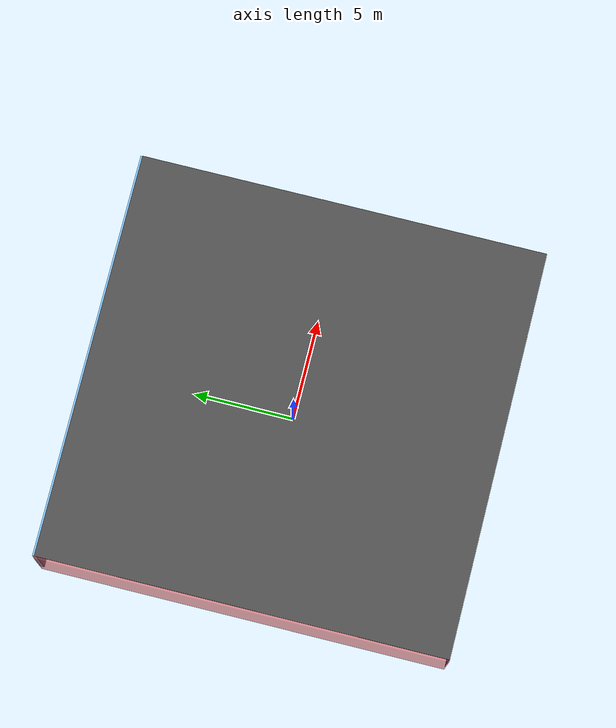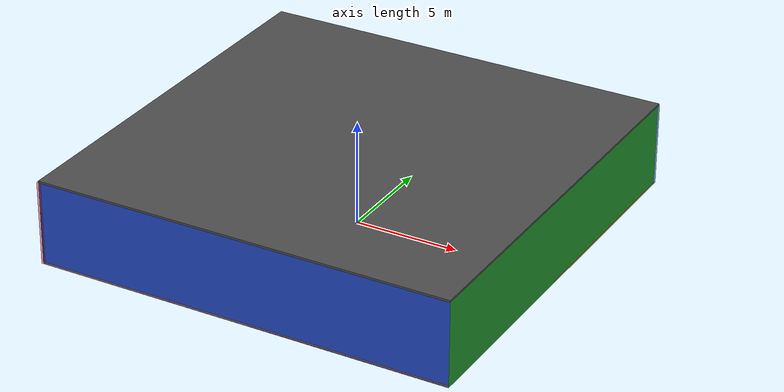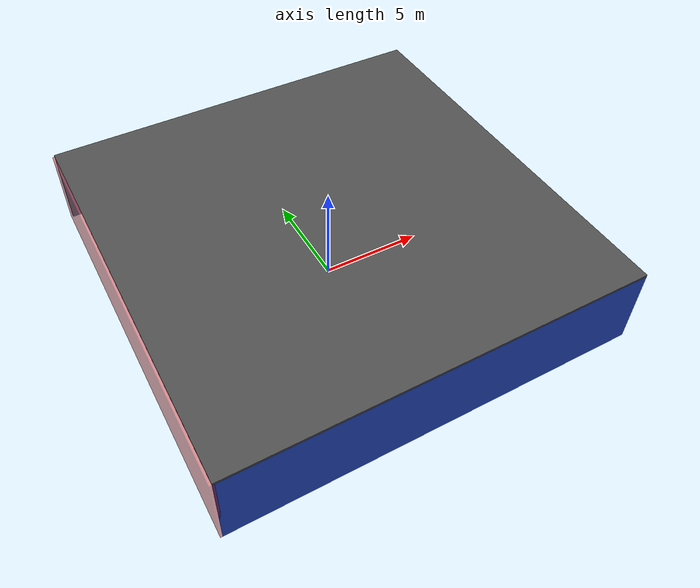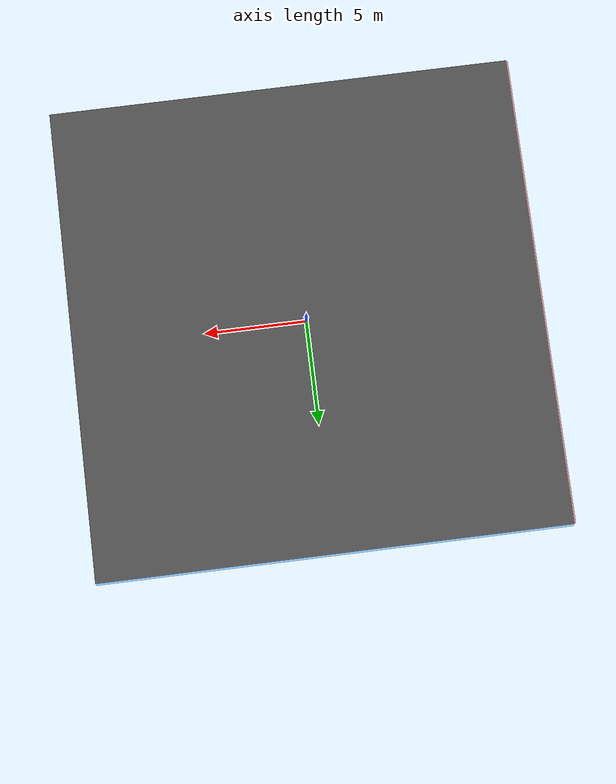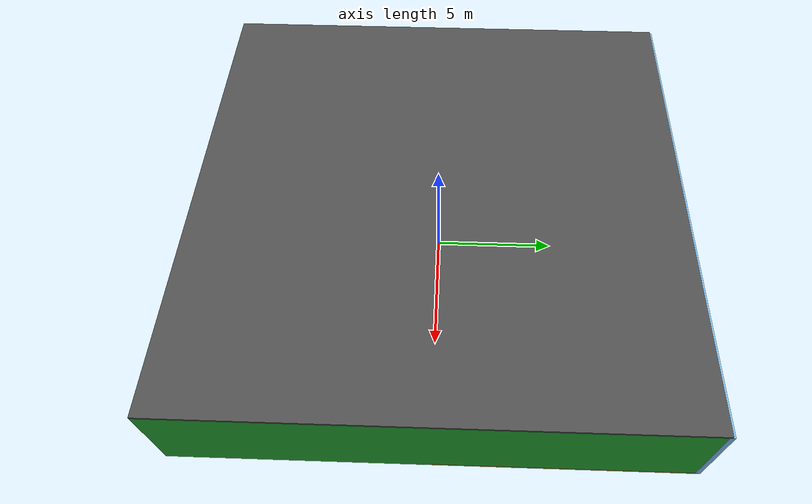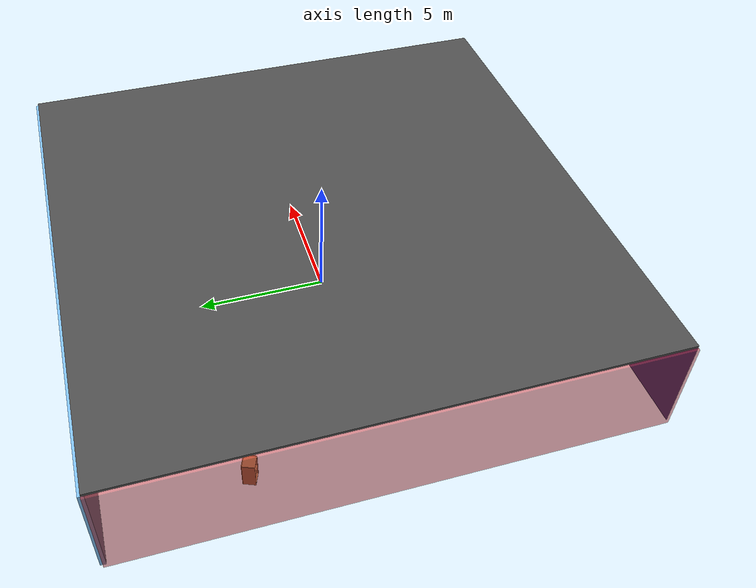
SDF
<sdf version="1.4">
 <world name="default">
  <physics type="ode">
   <max_step_size>0.001</max_step_size>
   <real_time_factor>1</real_time_factor>
   <real_time_update_rate>1000</real_time_update_rate>
   <gravity>0 0 -9.8</gravity>
  </physics>
  <scene><ambient>0.4 0.4 0.4 1</ambient><background>0.7 0.7 0.7 1</background><shadows>1</shadows></scene>
  <model name="Surrounding">
   <static>1</static>
   <link name="Ceiling">
    <collision name="Ceiling_Collision"><geometry><box><size>20 20 0.1</size></box></geometry></collision>
    <visual name="Ceiling_Visual">
     <geometry><box><size>20 20 0.1</size></box></geometry>
     <material>
      <script><uri>file://media/materials/scripts/gazebo.material</uri><name>Gazebo/DarkGrey</name></script>
     </material>
    </visual>
    <pose>0 0 4.05 0 0 0</pose>
   </link>
   <link name="Wall_South">
    <collision name="Wall_South_Collision">
     <geometry><box><size>20 0 4</size></box></geometry>
     <pose>0 0 2 0 -0 0</pose>
    </collision>
    <visual name="Wall_South_Visual">
     <pose>0 0 2 0 -0 0</pose>
     <geometry><box><size>20 0 4</size></box></geometry>
     <material>
      <script><uri>file://media/materials/scripts/gazebo.material</uri><name>Gazebo/BlueGlow</name></script>
     </material>
    </visual>
    <velocity_decay><linear>0</linear><angular>0</angular></velocity_decay>
    <pose>0 -10 0 0 -0 0</pose>
   </link>
   <link name="Wall_East">
    <collision name="Wall_21_Collision">
     <geometry><box><size>20 0 4</size></box></geometry>
     <pose>0 0 2 0 -0 0</pose>
    </collision>
    <visual name="Wall_21_Visual">
     <pose>0 0 2 0 -0 0</pose>
     <geometry><box><size>20 0 4</size></box></geometry>
     <material>
      <script><uri>file://media/materials/scripts/gazebo.material</uri><name>Gazebo/GreenGlow</name></script>
     </material>
    </visual>
    <velocity_decay><linear>0</linear><angular>0</angular></velocity_decay>
    <pose>10 0 0 0 -0 1.5708</pose>
   </link>
   <link name="Wall_North">
    <collision name="Wall_22_Collision">
     <geometry><box><size>20 0.2 4</size></box></geometry>
     <pose>0 0 2 0 -0 0</pose>
    </collision>
    <visual name="Wall_22_Visual">
     <pose>0 0 2 0 -0 0</pose>
     <geometry><box><size>20 0.2 4</size></box></geometry>
     <material>
      <script><uri>file://media/materials/scripts/gazebo.material</uri><name>Gazebo/SkyBlue</name></script>
     </material>
    </visual>
    <velocity_decay><linear>0</linear><angular>0</angular></velocity_decay>
    <pose>0 10 0 0 -0 0</pose>
   </link>
   <link name="Wall_West">
    <collision name="Wall_23_Collision">
     <geometry><box><size>20 0.2 4</size></box></geometry>
     <pose>0 0 2 0 -0 0</pose>
    </collision>
    <visual name="Wall_23_Visual">
     <pose>0 0 2 0 -0 0</pose>
     <geometry><box><size>20 0.2 4</size></box></geometry>
     <material>
      <script><uri>file://media/materials/scripts/gazebo.material</uri><name>Gazebo/RedTransparent</name></script>
     </material>
    </visual>
    <velocity_decay><linear>0</linear><angular>0</angular></velocity_decay>
    <pose>-10 0 0 0 0 -1.5708</pose>
   </link>
   <link name="Ground_link">
    <collision name="collision">
     <pose>0 0 .05 0 -0 0</pose>
     <geometry><box><size>20 20 0.1</size></box></geometry>
    </collision>
    <visual name="visual">
     <pose>0 0 .05 0 -0 0</pose>
     <geometry><box><size>20 20 0.1</size></box></geometry>
     <material>
      <script>
       <uri>file://media/materials/scripts/gazebo.material</uri>
       <name>Gazebo/OrangeTransparent</name>
      </script>
     </material>
    </visual>
   </link>
   <static>1</static>
  </model>
  <spherical_coordinates>
   <surface_model>EARTH_WGS84</surface_model>
   <latitude_deg>0</latitude_deg>
   <longitude_deg>0</longitude_deg>
   <elevation>0</elevation>
   <heading_deg>0</heading_deg>
  </spherical_coordinates>
  <light name="lightball_0" type="diffuse">
   <diffuse>0.8 0.8 0.8 1</diffuse>
   <specular>0.2 0.2 0.2 1</specular>
   <attenuation>
    <range>100</range>
    <constant>0.7</constant>
    <linear>0.01</linear>
    <quadratic>0.001</quadratic>
   </attenuation>
   <direction>-0.5 0.1 -0.9</direction>
   <pose>7.86650162492 5.13823107549 1.79994981799 0 0 0</pose>
  </light>
  <light name="lightball_1" type="diffuse">
   <diffuse>0.8 0.8 0.8 1</diffuse>
   <specular>0.2 0.2 0.2 1</specular>
   <attenuation>
    <range>100</range>
    <constant>0.7</constant>
    <linear>0.01</linear>
    <quadratic>0.001</quadratic>
   </attenuation>
   <direction>-0.5 0.1 -0.9</direction>
   <pose>9.20411738773 -3.74433462186 1.55409653953 0 0 0</pose>
  </light>
  <light name="lightball_2" type="diffuse">
   <diffuse>0.8 0.8 0.8 1</diffuse>
   <specular>0.2 0.2 0.2 1</specular>
   <attenuation>
    <range>100</range>
    <constant>0.7</constant>
    <linear>0.01</linear>
    <quadratic>0.001</quadratic>
   </attenuation>
   <direction>-0.5 0.1 -0.9</direction>
   <pose>-5.60280464886 7.14117293961 3.46554750211 0 0 0</pose>
  </light>
  <light name="lightball_3" type="diffuse">
   <diffuse>0.8 0.8 0.8 1</diffuse>
   <specular>0.2 0.2 0.2 1</specular>
   <attenuation>
    <range>100</range>
    <constant>0.7</constant>
    <linear>0.01</linear>
    <quadratic>0.001</quadratic>
   </attenuation>
   <direction>-0.5 0.1 -0.9</direction>
   <pose>-8.13371445307 -2.83843307198 1.43891529623 0 0 0</pose>
  </light>
  <light name="lightball_4" type="diffuse">
   <diffuse>0.8 0.8 0.8 1</diffuse>
   <specular>0.2 0.2 0.2 1</specular>
   <attenuation>
    <range>100</range>
    <constant>0.7</constant>
    <linear>0.01</linear>
    <quadratic>0.001</quadratic>
   </attenuation>
   <direction>-0.5 0.1 -0.9</direction>
   <pose>7.09842280765 5.4003790889 1.79756947315 0 0 0</pose>
  </light>
  <light name="lightball_5" type="diffuse">
   <diffuse>0.8 0.8 0.8 1</diffuse>
   <specular>0.2 0.2 0.2 1</specular>
   <attenuation>
    <range>100</range>
    <constant>0.7</constant>
    <linear>0.01</linear>
    <quadratic>0.001</quadratic>
   </attenuation>
   <direction>-0.5 0.1 -0.9</direction>
   <pose>6.52881619702 -8.600441002 2.13616189285 0 0 0</pose>
  </light>
  <include><uri>model://cabinet</uri><pose>-8.2370653193 4.84898800551 0 0 0 1.1838427813</pose></include>
  <include><uri>model://table</uri><pose>-3.75550066972 -2.04890920848 0 0 0 0.174107802859</pose></include>
  <include><uri>model://cabinet</uri><pose>0.76656030625 -7.22809423749 0 0 0 2.44097857729</pose></include>
  <include>
   <uri>model://construction_cone</uri>
   <pose>1.52500859566 -0.708291359888 0 0 0 0.374846039768</pose>
  </include>
  <include><uri>model://cabinet</uri><pose>4.81209018069 -7.66516190143 0 0 0 2.11640424046</pose></include>
  <include><uri>model://table</uri><pose>6.77446743076 -4.20299353042 0 0 0 0.922239706215</pose></include>
 </world>
</sdf>

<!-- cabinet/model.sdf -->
<sdf version="1.5">
  <model name="cabinet">
    <static>true</static>
    <link name="cabinet_bottom_plate">
      <inertial>
        <pose>0 0 -1 0 0 0</pose>
        <inertia>
          <ixx>2.050000</ixx>
          <ixy>0</ixy>
          <ixz>0</ixz>
          <iyy>2.050000</iyy>
          <iyz>0</iyz>
          <izz>2.050000</izz>
        </inertia>
        <mass>25.000000</mass>
      </inertial>
      <collision name="cabinet_bottom_plate_geom">
        <pose>0 0 0.010000 0 0 0</pose>
        <geometry>
          <box>
            <size>0.450000 0.450000 0.020000</size>
          </box>
        </geometry>
      </collision>
      <visual name="cabinet_bottom_plate_geom_visual">
        <pose>0 0 0.010000 0 0 0</pose>
        <geometry>
          <box>
            <size>0.450000 0.450000 0.020000</size>
          </box>
        </geometry>
        <material>
          <script>
            <uri>model://media/materials/scripts/gazebo.material</uri>
            <name>Gazebo/Wood</name>
          </script>
        </material>
      </visual>
      <collision name="cabinet_bottom_plate_geom_cabinet_back_plate">
        <pose>0.235000 0 0.510000 0 0 0</pose>
        <geometry>
          <box>
            <size>0.020000 0.450000 1.020000</size>
          </box>
        </geometry>
      </collision>
      <visual name="cabinet_bottom_plate_geom_cabinet_back_plate_visual">
        <pose>0.235000 0 0.510000 0 0 0</pose>
        <geometry>
          <box>
            <size>0.020000 0.450000 1.020000</size>
          </box>
        </geometry>
        <material>
          <script>
            <uri>model://media/materials/scripts/gazebo.material</uri>
            <name>Gazebo/Wood</name>
          </script>
        </material>
      </visual>
      <collision name="cabinet_bottom_plate_geom_cabinet_left_plate">
        <pose>0 0.235000 0.510000 0 0 0</pose>
        <geometry>
          <box>
            <size>0.450000 0.020000 1.020000</size>
          </box>
        </geometry>
      </collision>
      <visual name="cabinet_bottom_plate_geom_cabinet_left_plate_visual">
        <pose>0 0.235000 0.510000 0 0 0</pose>
        <geometry>
          <box>
            <size>0.450000 0.020000 1.020000</size>
          </box>
        </geometry>
        <material>
          <script>
            <uri>model://media/materials/scripts/gazebo.material</uri>
            <name>Gazebo/Wood</name>
          </script>
        </material>
      </visual>
      <collision name="cabinet_bottom_plate_geom_cabinet_middle_plate">
        <pose>0 0 0.510000 0 0 0</pose>
        <geometry>
          <box>
            <size>0.450000 0.450000 0.020000</size>
          </box>
        </geometry>
      </collision>
      <visual name="cabinet_bottom_plate_geom_cabinet_middle_plate_visual">
        <pose>0 0 0.510000 0 0 0</pose>
        <geometry>
          <box>
            <size>0.450000 0.450000 0.020000</size>
          </box>
        </geometry>
        <material>
          <script>
            <uri>model://media/materials/scripts/gazebo.material</uri>
            <name>Gazebo/Wood</name>
          </script>
        </material>
      </visual>
      <collision name="cabinet_bottom_plate_geom_cabinet_right_plate">
        <pose>0 -0.235000 0.510000 0 0 0</pose>
        <geometry>
          <box>
            <size>0.450000 0.020000 1.020000</size>
          </box>
        </geometry>
      </collision>
      <visual name="cabinet_bottom_plate_geom_cabinet_right_plate_visual">
        <pose>0 -0.235000 0.510000 0 0 0</pose>
        <geometry>
          <box>
            <size>0.450000 0.020000 1.020000</size>
          </box>
        </geometry>
        <material>
          <script>
            <uri>model://media/materials/scripts/gazebo.material</uri>
            <name>Gazebo/Wood</name>
          </script>
        </material>
      </visual>
      <collision name="cabinet_bottom_plate_geom_cabinet_top_plate">
        <pose>0 0 1.010000 0 0 0</pose>
        <geometry>
          <box>
            <size>0.450000 0.450000 0.020000</size>
          </box>
        </geometry>
      </collision>
      <visual name="cabinet_bottom_plate_geom_cabinet_top_plate_visual">
        <pose>0 0 1.010000 0 0 0</pose>
        <geometry>
          <box>
            <size>0.450000 0.450000 0.020000</size>
          </box>
        </geometry>
        <material>
          <script>
            <uri>model://media/materials/scripts/gazebo.material</uri>
            <name>Gazebo/Wood</name>
          </script>
        </material>
      </visual>
    </link>
  </model>
</sdf>

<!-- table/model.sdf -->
<sdf version="1.5">
  <model name="table">
    <static>true</static>
    <link name="link">
      <collision name="surface">
        <pose>0 0 1.0 0 0 0</pose>
        <geometry>
          <box>
            <size>1.5 0.8 0.03</size>
          </box>
        </geometry>
        <surface>
          <friction>
            <ode>
              <mu>0.6</mu>
              <mu2>0.6</mu2>
            </ode>
          </friction>
        </surface>
      </collision>
      <visual name="visual1">
        <pose>0 0 1.0 0 0 0</pose>
        <geometry>
          <box>
            <size>1.5 0.8 0.03</size>
          </box>
        </geometry>
        <material>
          <script>
            <uri>model://media/materials/scripts/gazebo.material</uri>
            <name>Gazebo/Wood</name>
          </script>
        </material>
      </visual>
      <collision name="front_left_leg">
        <pose>0.68 0.38 0.5 0 0 0</pose>
        <geometry>
          <cylinder>
            <radius>0.02</radius>
            <length>1.0</length>
          </cylinder>
        </geometry>
      </collision>
      <visual name="front_left_leg">
        <pose>0.68 0.38 0.5 0 0 0</pose>
        <geometry>
          <cylinder>
            <radius>0.02</radius>
            <length>1.0</length>
          </cylinder>
        </geometry>
        <material>
          <script>
            <uri>model://media/materials/scripts/gazebo.material</uri>
            <name>Gazebo/Grey</name>
          </script>
        </material>
      </visual>
      <collision name="front_right_leg">
        <pose>0.68 -0.38 0.5 0 0 0</pose>
        <geometry>
          <cylinder>
            <radius>0.02</radius>
            <length>1.0</length>
          </cylinder>
        </geometry>
      </collision>
      <visual name="front_right_leg">
        <pose>0.68 -0.38 0.5 0 0 0</pose>
        <geometry>
          <cylinder>
            <radius>0.02</radius>
            <length>1.0</length>
          </cylinder>
        </geometry>
        <material>
          <script>
            <uri>model://media/materials/scripts/gazebo.material</uri>
            <name>Gazebo/Grey</name>
          </script>
        </material>
      </visual>
      <collision name="back_right_leg">
        <pose>-0.68 -0.38 0.5 0 0 0</pose>
        <geometry>
          <cylinder>
            <radius>0.02</radius>
            <length>1.0</length>
          </cylinder>
        </geometry>
      </collision>
      <visual name="back_right_leg">
        <pose>-0.68 -0.38 0.5 0 0 0</pose>
        <geometry>
          <cylinder>
            <radius>0.02</radius>
            <length>1.0</length>
          </cylinder>
        </geometry>
        <material>
          <script>
            <uri>model://media/materials/scripts/gazebo.material</uri>
            <name>Gazebo/Grey</name>
          </script>
        </material>
      </visual>
      <collision name="back_left_leg">
        <pose>-0.68 0.38 0.5 0 0 0</pose>
        <geometry>
          <cylinder>
            <radius>0.02</radius>
            <length>1.0</length>
          </cylinder>
        </geometry>
      </collision>
      <visual name="back_left_leg">
        <pose>-0.68 0.38 0.5 0 0 0</pose>
        <geometry>
          <cylinder>
            <radius>0.02</radius>
            <length>1.0</length>
          </cylinder>
        </geometry>
        <material>
          <script>
            <uri>model://media/materials/scripts/gazebo.material</uri>
            <name>Gazebo/Grey</name>
          </script>
        </material>
      </visual>
    </link>
  </model>
</sdf>

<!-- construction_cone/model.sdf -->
<sdf version="1.5">
  <model name="Construction Cone">
    <link name="link">
      <collision name="collision">
        <geometry>
          <mesh>
            <scale>10 10 10</scale>
            <uri>file://isr-testbed/construction_cone/meshes/construction_cone.dae</uri>
          </mesh>
        </geometry>
      </collision>
      <visual name="visual">
        <geometry>
          <mesh>
            <scale>10 10 10</scale>
            <uri>file://isr-testbed/construction_cone/meshes/construction_cone.dae</uri>
          </mesh>
        </geometry>
      </visual>
    </link>
  </model>
</sdf>
